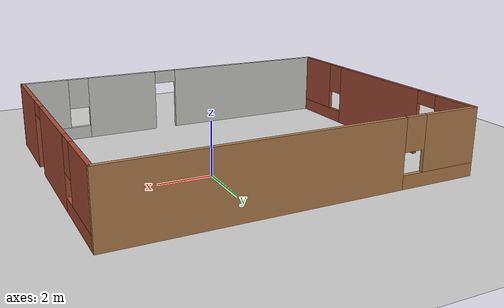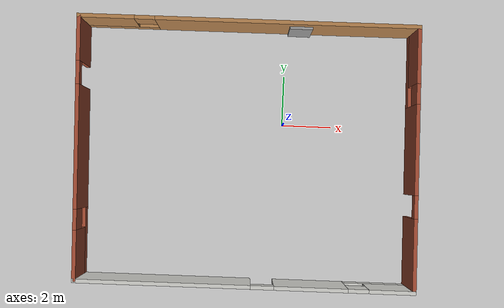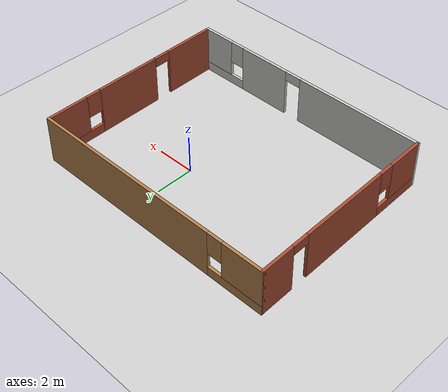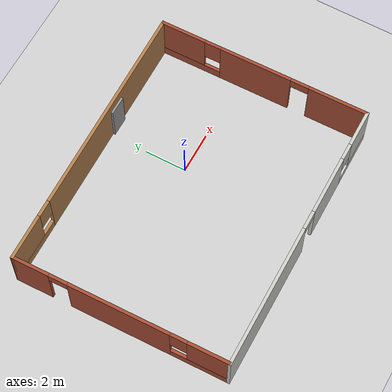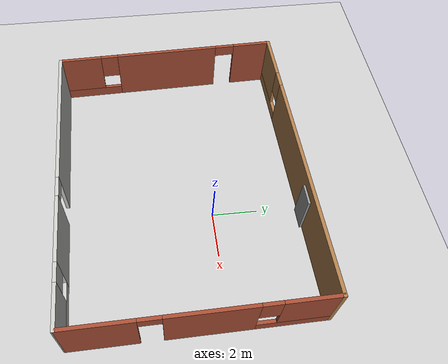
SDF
<sdf version="1.7">
 <world name="default">
  <light name="sun" type="directional">
   <pose>0 0 10 0 -0 0</pose>
   <diffuse>0.8 0.8 0.8 1</diffuse>
   <specular>0.2 0.2 0.2 1</specular>
   <attenuation>
    <range>1000</range>
    <constant>0.9</constant>
    <linear>0.01</linear>
    <quadratic>0.001</quadratic>
   </attenuation>
   <direction>-0.5 0.1 -0.9</direction>
   <spot><inner_angle>0</inner_angle><outer_angle>0</outer_angle><falloff>0</falloff></spot>
  </light>
  <model name="ground_plane">
   <static>1</static>
   <link name="link">
    <collision name="collision">
     <geometry><plane><normal>0 0 1</normal><size>100 100</size></plane></geometry>
     <surface>
      <contact><collide_bitmask>65535</collide_bitmask></contact>
      <friction><ode><mu>100</mu><mu2>50</mu2></ode></friction>
     </surface>
    </collision>
    <visual name="visual">
     <cast_shadows>0</cast_shadows>
     <geometry><plane><normal>0 0 1</normal><size>100 100</size></plane></geometry>
     <material>
      <script><uri>file://media/materials/scripts/gazebo.material</uri><name>Gazebo/Grey</name></script>
     </material>
    </visual>
   </link>
  </model>
  <gravity>0 0 -9.8</gravity>
  <magnetic_field>6e-06 2.3e-05 -4.2e-05</magnetic_field>
  <atmosphere type="adiabatic"/>
  <physics type="ode">
   <max_step_size>0.001</max_step_size>
   <real_time_factor>1</real_time_factor>
   <real_time_update_rate>1000</real_time_update_rate>
  </physics>
  <scene><ambient>0.4 0.4 0.4 1</ambient><background>0.7 0.7 0.7 1</background><shadows>1</shadows></scene>
  <spherical_coordinates>
   <surface_model>EARTH_WGS84</surface_model>
   <latitude_deg>0</latitude_deg>
   <longitude_deg>0</longitude_deg>
   <elevation>0</elevation>
   <heading_deg>0</heading_deg>
  </spherical_coordinates>
  <model name="room">
   <pose>-1.41595 -1.25456 0 0 -0 0</pose>
   <link name="Door_1">
    <collision name="Door_1_Collision">
     <geometry><box><size>0.9 0.17 2</size></box></geometry>
     <pose>0 0 1 0 -0 0</pose>
    </collision>
    <visual name="Door_1_Visual">
     <pose>0 0 1 0 -0 0</pose>
     <geometry><box><size>0.9 0.17 2</size></box></geometry>
     <material>
      <script><uri>file://media/materials/scripts/gazebo.material</uri><name>Gazebo/Grey</name></script>
     </material>
    </visual>
    <pose>1.94898 5.04039 0 0 -0 0</pose>
   </link>
   <link name="Wall_5">
    <pose>-6.54299 -0.058352 0 0 -0 -1.54326</pose>
    <visual name="Wall_5_Visual_0">
     <pose>-4.25077 0 1.25 0 -0 0</pose>
     <geometry><box><size>1.786 0.15 2.5</size></box></geometry>
     <material>
      <script><uri>file://media/materials/scripts/gazebo.material</uri><name>Gazebo/Bricks</name></script>
      <ambient>1 1 1 1</ambient>
     </material>
     <meta><layer>0</layer></meta>
    </visual>
    <collision name="Wall_5_Collision_0">
     <geometry><box><size>1.786 0.15 2.5</size></box></geometry>
     <pose>-4.25077 0 1.25 0 -0 0</pose>
    </collision>
    <visual name="Wall_5_Visual_1">
     <pose>-0.04461 0 1.25 0 -0 0</pose>
     <geometry><box><size>4.82633 0.15 2.5</size></box></geometry>
     <material>
      <script><uri>file://media/materials/scripts/gazebo.material</uri><name>Gazebo/Bricks</name></script>
      <ambient>1 1 1 1</ambient>
     </material>
     <meta><layer>0</layer></meta>
    </visual>
    <collision name="Wall_5_Collision_1">
     <geometry><box><size>4.82633 0.15 2.5</size></box></geometry>
     <pose>-0.04461 0 1.25 0 -0 0</pose>
    </collision>
    <visual name="Wall_5_Visual_2">
     <pose>3.75616 0 0.25 0 -0 0</pose>
     <geometry><box><size>2.77522 0.15 0.5</size></box></geometry>
     <material>
      <script><uri>file://media/materials/scripts/gazebo.material</uri><name>Gazebo/Bricks</name></script>
      <ambient>1 1 1 1</ambient>
     </material>
     <meta><layer>0</layer></meta>
    </visual>
    <collision name="Wall_5_Collision_2">
     <geometry><box><size>2.77522 0.15 0.5</size></box></geometry>
     <pose>3.75616 0 0.25 0 -0 0</pose>
    </collision>
    <visual name="Wall_5_Visual_3">
     <pose>4.15616 0 1.5 0 -0 0</pose>
     <geometry><box><size>1.97522 0.15 2</size></box></geometry>
     <material>
      <script><uri>file://media/materials/scripts/gazebo.material</uri><name>Gazebo/Bricks</name></script>
      <ambient>1 1 1 1</ambient>
     </material>
     <meta><layer>0</layer></meta>
    </visual>
    <collision name="Wall_5_Collision_3">
     <geometry><box><size>1.97522 0.15 2</size></box></geometry>
     <pose>4.15616 0 1.5 0 -0 0</pose>
    </collision>
    <visual name="Wall_5_Visual_4">
     <pose>2.76855 0 1.9 0 -0 0</pose>
     <geometry><box><size>0.8 0.15 1.2</size></box></geometry>
     <material>
      <script><uri>file://media/materials/scripts/gazebo.material</uri><name>Gazebo/Bricks</name></script>
      <ambient>1 1 1 1</ambient>
     </material>
     <meta><layer>0</layer></meta>
    </visual>
    <collision name="Wall_5_Collision_4">
     <geometry><box><size>0.8 0.15 1.2</size></box></geometry>
     <pose>2.76855 0 1.9 0 -0 0</pose>
    </collision>
    <visual name="Wall_5_Visual_5">
     <pose>-2.90777 0 2.25 0 -0 0</pose>
     <geometry><box><size>0.9 0.15 0.5</size></box></geometry>
     <material>
      <script><uri>file://media/materials/scripts/gazebo.material</uri><name>Gazebo/Bricks</name></script>
      <ambient>1 1 1 1</ambient>
     </material>
     <meta><layer>0</layer></meta>
    </visual>
    <collision name="Wall_5_Collision_5">
     <geometry><box><size>0.9 0.15 0.5</size></box></geometry>
     <pose>-2.90777 0 2.25 0 -0 0</pose>
    </collision>
   </link>
   <link name="Wall_6">
    <pose>0.13991 -5.1252 0 0 -0 0.00711</pose>
    <visual name="Wall_6_Visual_0">
     <pose>-3.18826 0 1.25 0 -0 0</pose>
     <geometry><box><size>6.86047 0.15 2.5</size></box></geometry>
     <material>
      <script><uri>file://media/materials/scripts/gazebo.material</uri><name>Gazebo/CeilingTiled</name></script>
      <ambient>1 1 1 1</ambient>
     </material>
     <meta><layer>0</layer></meta>
    </visual>
    <collision name="Wall_6_Collision_0">
     <geometry><box><size>6.86047 0.15 2.5</size></box></geometry>
     <pose>-3.18826 0 1.25 0 -0 0</pose>
    </collision>
    <visual name="Wall_6_Visual_1">
     <pose>2.57185 0 1.25 0 -0 0</pose>
     <geometry><box><size>2.85973 0.15 2.5</size></box></geometry>
     <material>
      <script><uri>file://media/materials/scripts/gazebo.material</uri><name>Gazebo/CeilingTiled</name></script>
      <ambient>1 1 1 1</ambient>
     </material>
     <meta><layer>0</layer></meta>
    </visual>
    <collision name="Wall_6_Collision_1">
     <geometry><box><size>2.85973 0.15 2.5</size></box></geometry>
     <pose>2.57185 0 1.25 0 -0 0</pose>
    </collision>
    <visual name="Wall_6_Visual_2">
     <pose>5.3101 0 0.25 0 -0 0</pose>
     <geometry><box><size>2.61678 0.15 0.5</size></box></geometry>
     <material>
      <script><uri>file://media/materials/scripts/gazebo.material</uri><name>Gazebo/CeilingTiled</name></script>
      <ambient>1 1 1 1</ambient>
     </material>
     <meta><layer>0</layer></meta>
    </visual>
    <collision name="Wall_6_Collision_2">
     <geometry><box><size>2.61678 0.15 0.5</size></box></geometry>
     <pose>5.3101 0 0.25 0 -0 0</pose>
    </collision>
    <visual name="Wall_6_Visual_3">
     <pose>5.7101 0 1.5 0 -0 0</pose>
     <geometry><box><size>1.81678 0.15 2</size></box></geometry>
     <material>
      <script><uri>file://media/materials/scripts/gazebo.material</uri><name>Gazebo/CeilingTiled</name></script>
      <ambient>1 1 1 1</ambient>
     </material>
     <meta><layer>0</layer></meta>
    </visual>
    <collision name="Wall_6_Collision_3">
     <geometry><box><size>1.81678 0.15 2</size></box></geometry>
     <pose>5.7101 0 1.5 0 -0 0</pose>
    </collision>
    <visual name="Wall_6_Visual_4">
     <pose>4.40172 0 1.9 0 -0 0</pose>
     <geometry><box><size>0.8 0.15 1.2</size></box></geometry>
     <material>
      <script><uri>file://media/materials/scripts/gazebo.material</uri><name>Gazebo/CeilingTiled</name></script>
      <ambient>1 1 1 1</ambient>
     </material>
     <meta><layer>0</layer></meta>
    </visual>
    <collision name="Wall_6_Collision_4">
     <geometry><box><size>0.8 0.15 1.2</size></box></geometry>
     <pose>4.40172 0 1.9 0 -0 0</pose>
    </collision>
    <visual name="Wall_6_Visual_5">
     <pose>0.69198 0 2.25 0 -0 0</pose>
     <geometry><box><size>0.9 0.15 0.5</size></box></geometry>
     <material>
      <script><uri>file://media/materials/scripts/gazebo.material</uri><name>Gazebo/CeilingTiled</name></script>
      <ambient>1 1 1 1</ambient>
     </material>
     <meta><layer>0</layer></meta>
    </visual>
    <collision name="Wall_6_Collision_5">
     <geometry><box><size>0.9 0.15 0.5</size></box></geometry>
     <pose>0.69198 0 2.25 0 -0 0</pose>
    </collision>
   </link>
   <link name="Wall_7">
    <pose>6.59019 0.046459 0 0 -0 1.58912</pose>
    <visual name="Wall_7_Visual_0">
     <pose>-3.71751 0 1.25 0 -0 0</pose>
     <geometry><box><size>2.87392 0.15 2.5</size></box></geometry>
     <material>
      <script><uri>file://media/materials/scripts/gazebo.material</uri><name>Gazebo/Bricks</name></script>
      <ambient>1 1 1 1</ambient>
     </material>
     <meta><layer>0</layer></meta>
    </visual>
    <collision name="Wall_7_Collision_0">
     <geometry><box><size>2.87392 0.15 2.5</size></box></geometry>
     <pose>-3.71751 0 1.25 0 -0 0</pose>
    </collision>
    <visual name="Wall_7_Visual_1">
     <pose>0.382123 0 1.25 0 -0 0</pose>
     <geometry><box><size>3.52535 0.15 2.5</size></box></geometry>
     <material>
      <script><uri>file://media/materials/scripts/gazebo.material</uri><name>Gazebo/Bricks</name></script>
      <ambient>1 1 1 1</ambient>
     </material>
     <meta><layer>0</layer></meta>
    </visual>
    <collision name="Wall_7_Collision_1">
     <geometry><box><size>3.52535 0.15 2.5</size></box></geometry>
     <pose>0.382123 0 1.25 0 -0 0</pose>
    </collision>
    <visual name="Wall_7_Visual_2">
     <pose>3.64963 0 0.25 0 -0 0</pose>
     <geometry><box><size>3.00967 0.15 0.5</size></box></geometry>
     <material>
      <script><uri>file://media/materials/scripts/gazebo.material</uri><name>Gazebo/Bricks</name></script>
      <ambient>1 1 1 1</ambient>
     </material>
     <meta><layer>0</layer></meta>
    </visual>
    <collision name="Wall_7_Collision_2">
     <geometry><box><size>3.00967 0.15 0.5</size></box></geometry>
     <pose>3.64963 0 0.25 0 -0 0</pose>
    </collision>
    <visual name="Wall_7_Visual_3">
     <pose>4.04963 0 1.5 0 -0 0</pose>
     <geometry><box><size>2.20967 0.15 2</size></box></geometry>
     <material>
      <script><uri>file://media/materials/scripts/gazebo.material</uri><name>Gazebo/Bricks</name></script>
      <ambient>1 1 1 1</ambient>
     </material>
     <meta><layer>0</layer></meta>
    </visual>
    <collision name="Wall_7_Collision_3">
     <geometry><box><size>2.20967 0.15 2</size></box></geometry>
     <pose>4.04963 0 1.5 0 -0 0</pose>
    </collision>
    <visual name="Wall_7_Visual_4">
     <pose>2.5448 0 1.9 0 -0 0</pose>
     <geometry><box><size>0.8 0.15 1.2</size></box></geometry>
     <material>
      <script><uri>file://media/materials/scripts/gazebo.material</uri><name>Gazebo/Bricks</name></script>
      <ambient>1 1 1 1</ambient>
     </material>
     <meta><layer>0</layer></meta>
    </visual>
    <collision name="Wall_7_Collision_4">
     <geometry><box><size>0.8 0.15 1.2</size></box></geometry>
     <pose>2.5448 0 1.9 0 -0 0</pose>
    </collision>
    <visual name="Wall_7_Visual_5">
     <pose>-1.83055 0 2.25 0 -0 0</pose>
     <geometry><box><size>0.9 0.15 0.5</size></box></geometry>
     <material>
      <script><uri>file://media/materials/scripts/gazebo.material</uri><name>Gazebo/Bricks</name></script>
      <ambient>1 1 1 1</ambient>
     </material>
     <meta><layer>0</layer></meta>
    </visual>
    <collision name="Wall_7_Collision_5">
     <geometry><box><size>0.9 0.15 0.5</size></box></geometry>
     <pose>-1.83055 0 2.25 0 -0 0</pose>
    </collision>
   </link>
   <link name="Wall_8">
    <pose>-0.09271 5.11331 0 0 -0 -3.13275</pose>
    <visual name="Wall_8_Visual_0">
     <pose>-1.50625 0 1.25 0 -0 0</pose>
     <geometry><box><size>10.3177 0.15 2.5</size></box></geometry>
     <material>
      <script><uri>file://media/materials/scripts/gazebo.material</uri><name>Gazebo/Wood</name></script>
      <ambient>1 1 1 1</ambient>
     </material>
     <meta><layer>0</layer></meta>
    </visual>
    <collision name="Wall_8_Collision_0">
     <geometry><box><size>10.3177 0.15 2.5</size></box></geometry>
     <pose>-1.50625 0 1.25 0 -0 0</pose>
    </collision>
    <visual name="Wall_8_Visual_1">
     <pose>5.15886 0 0.25 0 -0 0</pose>
     <geometry><box><size>3.0125 0.15 0.5</size></box></geometry>
     <material>
      <script><uri>file://media/materials/scripts/gazebo.material</uri><name>Gazebo/Wood</name></script>
      <ambient>1 1 1 1</ambient>
     </material>
     <meta><layer>0</layer></meta>
    </visual>
    <collision name="Wall_8_Collision_1">
     <geometry><box><size>3.0125 0.15 0.5</size></box></geometry>
     <pose>5.15886 0 0.25 0 -0 0</pose>
    </collision>
    <visual name="Wall_8_Visual_2">
     <pose>5.55886 0 1.5 0 -0 0</pose>
     <geometry><box><size>2.2125 0.15 2</size></box></geometry>
     <material>
      <script><uri>file://media/materials/scripts/gazebo.material</uri><name>Gazebo/Wood</name></script>
      <ambient>1 1 1 1</ambient>
     </material>
     <meta><layer>0</layer></meta>
    </visual>
    <collision name="Wall_8_Collision_2">
     <geometry><box><size>2.2125 0.15 2</size></box></geometry>
     <pose>5.55886 0 1.5 0 -0 0</pose>
    </collision>
    <visual name="Wall_8_Visual_3">
     <pose>4.05261 0 1.9 0 -0 0</pose>
     <geometry><box><size>0.8 0.15 1.2</size></box></geometry>
     <material>
      <script><uri>file://media/materials/scripts/gazebo.material</uri><name>Gazebo/Wood</name></script>
      <ambient>1 1 1 1</ambient>
     </material>
     <meta><layer>0</layer></meta>
    </visual>
    <collision name="Wall_8_Collision_3">
     <geometry><box><size>0.8 0.15 1.2</size></box></geometry>
     <pose>4.05261 0 1.9 0 -0 0</pose>
    </collision>
   </link>
   <static>1</static>
  </model>
 </world>
</sdf>
